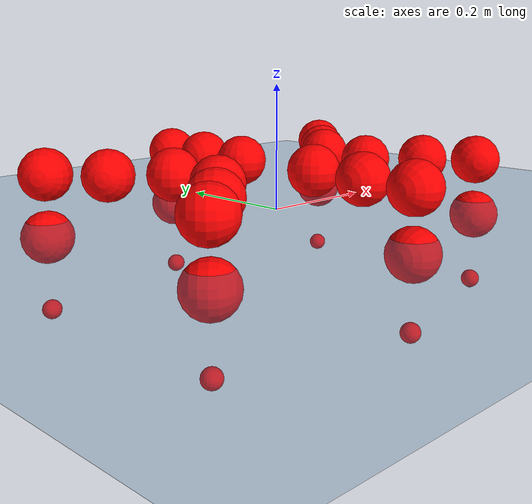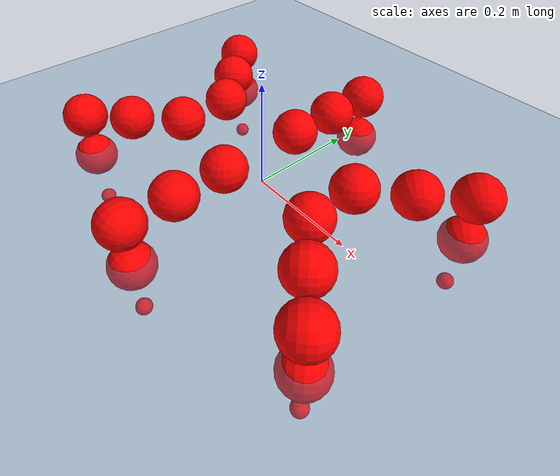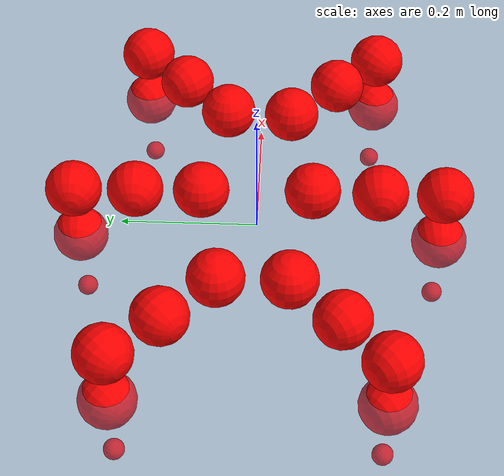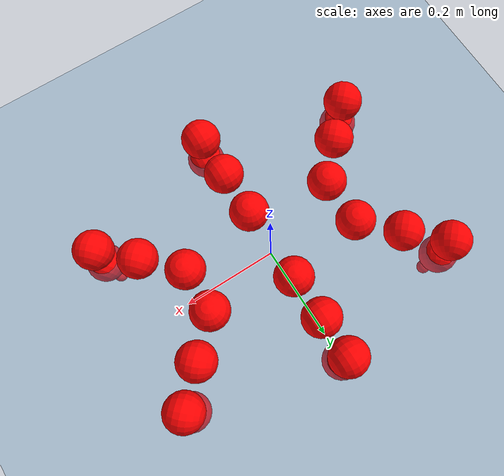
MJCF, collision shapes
<mujoco model="Golem">
  <compiler angle="radian" assetdir="assets" balanceinertia="true" inertiafromgeom="false"/>

  <option timestep="0.005" density="1.2" viscosity="2e-05"/>

  <size nkey="1"/>

  <visual>
    <quality shadowsize="8192"/>
    <map shadowclip="0.5"/>
  </visual>

  <default>
    <default class="/">
      <joint armature="0.01" damping="0.01" frictionloss="0.01"/>
      <geom contype="0" conaffinity="0" group="1" solref="-1000 -80"/>
      <site size="0.01 0.005 0.005" group="5"/>
      <general forcelimited="true" biastype="affine" gainprm="25" biasprm="0 -25 -0.5"/>
      <default class="visual">
        <geom type="mesh" group="2"/>
      </default>
      <default class="collision">
        <geom group="3"/>
      </default>
      <default class="foot">
        <geom size="0.01 0 0" condim="6" group="4" priority="1" solimp="0.015 1 0.01"/>
      </default>
      <default class="reward_collision_sphere">
        <geom group="5" rgba="1 0 0 1"/>
      </default>
    </default>
  </default>

  <asset>
    <texture type="skybox" colorspace="auto" name="//unnamed_texture_0" builtin="gradient" rgb1="0.95 0.95 0.95" rgb2="0.95 0.95 0.95" width="100" height="600"/>
    <texture type="2d" colorspace="auto" name="texplane" builtin="checker" rgb1="0.345 0.575 0.748" rgb2="0.345 0.575 0.748" markrgb="1 1 1" width="512" height="512"/>
    <material name="MatPlane" class="/" texture="texplane" texuniform="true" texrepeat="2 2" specular="0.9"/>
    <mesh name="body" class="/" file="body.stl" scale="0.001 0.001 0.001"/>
    <mesh name="coxa" class="/" file="coxa.stl" scale="0.001 0.001 0.001"/>
    <mesh name="femur" class="/" file="femur.stl" scale="0.001 0.001 0.001"/>
    <mesh name="tibia" class="/" file="tibia.stl" scale="0.001 0.001 0.001"/>
    <mesh name="tarsus" class="/" file="tarsus.stl" scale="0.001 0.001 0.001"/>
  </asset>

  <worldbody>
    <geom name="floor" class="/" size="100 100 0.125" type="plane" group="0" material="MatPlane"/>
    <light name="toplight_shadow" class="/" pos="0 0 5" dir="0.0990148 0.0990148 -0.990148" type="directional" ambient="0.04 0.04 0.04" diffuse="0.55 0.55 0.55" specular="0.12 0.12 0.12"/>
    <light name="toplight_fill" class="/" pos="0 0 5" dir="0.0990148 0.0990148 -0.990148" type="directional" castshadow="false" ambient="0.04 0.04 0.04" diffuse="0.3 0.3 0.3" specular="0.08 0.08 0.08"/>
    <body name="trunk" pos="-0.000808314 -0.000345449 -0.00059775" quat="1 0.000115 -5.80089e-05 -0.000284759">
      <inertial pos="0.00115084 -0.000338824 -0.00486212" quat="0.999997 0.00174687 -0.00154909 -3.02631e-05" mass="3.83619" diaginertia="0.0142378 0.00447708 0.0177415"/>
      <joint name="//unnamed_joint_0" type="free"/>
      <geom name="//unnamed_geom_1" class="/" pos="0 0 0.0715928" quat="1 0 0 0" type="mesh" rgba="0.9 0.9 0.9 1" mesh="body"/>
      <site name="imu" class="/" pos="0.149186 0.00396423 0.113471" size="0.0101499"/>
      <camera name="track" class="/" pos="0 -1.70732 0" quat="0.707107 0.707107 0 0" mode="trackcom"/>
      <camera name="ego_camera" class="/" pos="0.139446 0 0.111864" quat="-0.5 -0.5 0.5 0.5"/>
      <body name="coxa_RR" pos="-0.190067 -0.0729544 0.0709612" quat="0.382886 0.000226833 -0.000323626 -0.923795">
        <inertial pos="6.72235e-05 -0.000185557 -0.000344594" quat="0.999999 -0.000262292 0.00160825 3.21061e-05" mass="0.206495" diaginertia="0.0139095 0.00450681 0.0167241"/>
        <joint name="coxa_joint_RR" class="/" pos="0 0 0" axis="-0.00232008 -0.00025499 -0.999997" range="-3.13367 3.15283" armature="0.0102368" damping="0.00901484" frictionloss="0.00991617"/>
        <geom name="//unnamed_geom_2" class="/" type="mesh" rgba="0.2 0.2 0.2 1" mesh="coxa"/>
        <geom name="//unnamed_geom_3" class="reward_collision_sphere" size="0.0405995" pos="-0.0321798 0 0"/>
        <body name="femur_RR" pos="0.0650874 0.0032 -0.00175025" quat="0.500012 -0.5 0.500307 0.499681">
          <inertial pos="-0.00260826 -5.45354e-05 -0.0026536" quat="0.999914 -0.00646568 0.0111363 -0.00258588" mass="0.204158" diaginertia="0.0138735 0.00440693 0.0170629"/>
          <joint name="femur_joint_RR" class="/" pos="0 0 0" axis="-0.00366185 -1.96332e-05 -0.999993" stiffness="0.00755426" range="-3.11831 3.13775" armature="0.00990542" damping="0" frictionloss="0.0102595"/>
          <geom name="//unnamed_geom_4" class="/" type="mesh" rgba="0.9 0.9 0.9 1" mesh="femur"/>
          <geom name="//unnamed_geom_5" class="reward_collision_sphere" size="0.0405995"/>
          <body name="tibia_RR" pos="0.00185856 -0.0915676 -0.00190893" quat="0.000357075 1 -4.64469e-05 4.80513e-05">
            <inertial pos="-0.000170118 0.000446682 -0.00213307" quat="0.999999 0.000695308 0.00130572 -0.000322884" mass="0.214036" diaginertia="0.0147886 0.00476028 0.0180655"/>
            <joint name="tibia_joint_RR" class="/" pos="0 0 0" axis="-0.0073181 -0.00750843 0.999945" range="-3.14765 3.13646" armature="0.0103478" damping="0.00252287" frictionloss="0.00934044"/>
            <geom name="//unnamed_geom_6" class="/" type="mesh" rgba="0.2 0.2 0.2 1" mesh="tibia"/>
            <geom name="//unnamed_geom_7" class="reward_collision_sphere" size="0.0405995"/>
            <body name="tarsus_RR" pos="0.0935766 -0.000488601 -0.000735622" quat="1 -6.2732e-06 6.77895e-06 6.25704e-06">
              <inertial pos="0.0663283 0.000628171 9.85297e-05" quat="0.510082 0.497796 0.500068 0.491882" mass="0.213976" diaginertia="0.013966 0.00450652 0.0178335"/>
              <joint name="tarsus_joint_RR" class="/" pos="0 0 0" axis="-0.0071753 0.00552162 0.999959" range="-3.14824 3.12411" armature="0.0105362" damping="0.0409939" frictionloss="0.00961771"/>
              <geom name="//unnamed_geom_8" class="/" type="mesh" rgba="0.9 0.9 0.9 1" mesh="tarsus"/>
              <geom name="foot_1" class="foot" size="0.00996376" pos="0.120138 0 0" quat="0 -0.707107 0 0.707107"/>
              <geom name="//unnamed_geom_10" class="reward_collision_sphere" size="0.0405995"/>
              <geom name="//unnamed_geom_11" class="reward_collision_sphere" size="0.0152248" pos="0.115311 0 0"/>
              <site name="foot_1" class="foot" pos="0.120138 0 0" quat="0 -0.707107 0 0.707107" size="0.0101499"/>
            </body>
          </body>
        </body>
      </body>
      <body name="coxa_RM" pos="0.000577731 -0.111746 0.0732314" quat="0.70715 0.000818267 -0.0010368 -0.707062">
        <inertial pos="-0.001694 -3.61116e-05 -0.00224416" quat="0.999974 -0.00572907 0.0027826 -0.00336513" mass="0.20975" diaginertia="0.0136982 0.00451805 0.0175984"/>
        <joint name="coxa_joint_RM" class="/" pos="0 0 0" axis="-0.00331812 0.00110952 -0.999994" range="-3.12519 3.13485" armature="0.01005" damping="0.00903822" frictionloss="0.0104664"/>
        <geom name="//unnamed_geom_12" class="/" type="mesh" rgba="0.2 0.2 0.2 1" mesh="coxa"/>
        <geom name="//unnamed_geom_13" class="reward_collision_sphere" size="0.0405995" pos="-0.0321798 0 0"/>
        <body name="femur_RM" pos="0.0647125 0.00035488 -0.00155465" quat="0.500056 -0.499928 0.500367 0.49965">
          <inertial pos="0.00249134 -0.000491127 0.000163748" quat="0.999916 0.00768327 -0.00644354 0.00819322" mass="0.211137" diaginertia="0.0139939 0.0044224 0.0175558"/>
          <joint name="femur_joint_RM" class="/" pos="0 0 0" axis="-0.000836888 0.00899896 -0.999959" range="-3.13493 3.14247" armature="0.00968429" damping="0.00540733" frictionloss="0.0099804"/>
          <geom name="//unnamed_geom_14" class="/" type="mesh" rgba="0.9 0.9 0.9 1" mesh="femur"/>
          <geom name="//unnamed_geom_15" class="reward_collision_sphere" size="0.0405995"/>
          <body name="tibia_RM" pos="0.000727152 -0.0924023 -0.000202412" quat="4.45408e-05 1 0.000224424 7.90614e-05">
            <inertial pos="-0.0025042 -0.00105238 -0.000377065" quat="0.999999 0.000561302 0.000275208 -0.00146786" mass="0.207202" diaginertia="0.014325 0.00440694 0.0167449"/>
            <joint name="tibia_joint_RM" class="/" pos="0 0 0" axis="0.000290005 0.00168458 0.999999" range="-3.13019 3.15509" armature="0.0101032" damping="0.0121839" frictionloss="0.0105981"/>
            <geom name="//unnamed_geom_16" class="/" type="mesh" rgba="0.2 0.2 0.2 1" mesh="tibia"/>
            <geom name="//unnamed_geom_17" class="reward_collision_sphere" size="0.0405995"/>
            <body name="tarsus_RM" pos="0.094757 -0.000769082 -0.000227932" quat="1 3.23249e-05 0.000300101 -2.52224e-05">
              <inertial pos="0.065032 0.000457762 -0.000288589" quat="0.497867 0.498753 0.502999 0.500366" mass="0.207518" diaginertia="0.0136251 0.00449289 0.0176014"/>
              <joint name="tarsus_joint_RM" class="/" pos="0 0 0" axis="-0.000655089 0.00822492 0.999966" range="-3.12837 3.13539" armature="0.0100675" damping="0.00526466" frictionloss="0.010423"/>
              <geom name="//unnamed_geom_18" class="/" type="mesh" rgba="0.9 0.9 0.9 1" mesh="tarsus"/>
              <geom name="foot_2" class="foot" size="0.00932528" pos="0.120138 0 0" quat="0 -0.707107 0 0.707107"/>
              <geom name="//unnamed_geom_20" class="reward_collision_sphere" size="0.0405995"/>
              <geom name="//unnamed_geom_21" class="reward_collision_sphere" size="0.0152248" pos="0.115311 0 0"/>
              <site name="foot_2" class="foot" pos="0.120138 0 0" quat="0 -0.707107 0 0.707107" size="0.0101499"/>
            </body>
          </body>
        </body>
      </body>
      <body name="coxa_RF" pos="0.190865 -0.068898 0.0696521" quat="0.923928 -4.47578e-05 0.000273167 -0.382565">
        <inertial pos="-0.00254947 -0.000791049 0.000804299" quat="0.99995 0.000364547 0.00736824 -0.00680909" mass="0.213724" diaginertia="0.0141315 0.00434866 0.0173034"/>
        <joint name="coxa_joint_RF" class="/" pos="0 0 0" axis="-0.00219418 -0.000694712 -0.999997" range="-3.12581 3.13737" armature="0.0108196" damping="0.0106529" frictionloss="0.0106713"/>
        <geom name="//unnamed_geom_22" class="/" type="mesh" rgba="0.2 0.2 0.2 1" mesh="coxa"/>
        <geom name="//unnamed_geom_23" class="reward_collision_sphere" size="0.0405995" pos="-0.0321798 0 0"/>
        <body name="femur_RF" pos="0.0642185 -0.00103772 0.0010375" quat="0.499614 -0.500219 0.499716 0.500451">
          <inertial pos="0.000119767 0.00245269 9.43828e-05" quat="0.999997 0.00156518 -7.66626e-05 0.00189154" mass="0.206829" diaginertia="0.0143383 0.00442605 0.0174872"/>
          <joint name="femur_joint_RF" class="/" pos="0 0 0" axis="0.00369705 0.000183343 -0.999993" range="-3.14859 3.11933" armature="0.0101494" damping="0.0057425" frictionloss="0.0106563"/>
          <geom name="//unnamed_geom_24" class="/" type="mesh" rgba="0.9 0.9 0.9 1" mesh="femur"/>
          <geom name="//unnamed_geom_25" class="reward_collision_sphere" size="0.0405995"/>
          <body name="tibia_RF" pos="0.0015337 -0.0903017 0.00122122" quat="-0.000113691 1 6.41031e-05 0.000369691">
            <inertial pos="-0.0019308 -0.00159243 0.00226138" quat="0.999999 0.000877641 -0.000136146 -0.000534571" mass="0.212746" diaginertia="0.0142794 0.00456944 0.0175458"/>
            <joint name="tibia_joint_RF" class="/" pos="0 0 0" axis="-0.00191603 -0.00204414 0.999996" range="-3.12895 3.10981" armature="0.01015" damping="0.00233647" frictionloss="0.0104267"/>
            <geom name="//unnamed_geom_26" class="/" type="mesh" rgba="0.2 0.2 0.2 1" mesh="tibia"/>
            <geom name="//unnamed_geom_27" class="reward_collision_sphere" size="0.0405995"/>
            <body name="tarsus_RF" pos="0.0954063 0.00220227 -0.00179351" quat="1 0.000144118 0.000506744 -0.000100523">
              <inertial pos="0.0634317 0.000300658 -0.000745551" quat="0.501238 0.502316 0.499785 0.496643" mass="0.206303" diaginertia="0.0140793 0.00467604 0.0170905"/>
              <joint name="tarsus_joint_RF" class="/" pos="0 0 0" axis="-0.00692914 0.00132016 0.999975" range="-3.13896 3.14176" armature="0.0109992" damping="0.00161444" frictionloss="0.0114922"/>
              <geom name="//unnamed_geom_28" class="/" type="mesh" rgba="0.9 0.9 0.9 1" mesh="tarsus"/>
              <geom name="foot_3" class="foot" size="0.0110883" pos="0.120138 0 0" quat="0 -0.707107 0 0.707107"/>
              <geom name="//unnamed_geom_30" class="reward_collision_sphere" size="0.0405995"/>
              <geom name="//unnamed_geom_31" class="reward_collision_sphere" size="0.0152248" pos="0.115311 0 0"/>
              <site name="foot_3" class="foot" pos="0.120138 0 0" quat="0 -0.707107 0 0.707107" size="0.0101499"/>
            </body>
          </body>
        </body>
      </body>
      <body name="coxa_LR" pos="-0.191038 0.0727027 0.0715088" quat="0.382346 -0.000822995 -0.000518259 0.924019">
        <inertial pos="0.000368418 -0.0012543 -0.00220677" quat="0.999968 -0.00134598 -0.0065773 0.00439966" mass="0.197482" diaginertia="0.0137088 0.00437294 0.0167953"/>
        <joint name="coxa_joint_LR" class="/" pos="0 0 0" axis="-0.000973159 0.00131795 -0.999999" range="-3.11797 3.19167" armature="0.0109403" damping="0.0130864" frictionloss="0.00881306"/>
        <geom name="//unnamed_geom_32" class="/" type="mesh" rgba="0.2 0.2 0.2 1" mesh="coxa"/>
        <geom name="//unnamed_geom_33" class="reward_collision_sphere" size="0.0405995" pos="-0.0321798 0 0"/>
        <body name="femur_LR" pos="0.0655863 -0.00108591 -0.00167712" quat="0.499959 -0.50008 0.500021 0.499941">
          <inertial pos="-0.000727908 -0.000698694 -0.000640199" quat="1 -0.000113609 -0.000947012 0.000279069" mass="0.208679" diaginertia="0.0143128 0.00467744 0.0175986"/>
          <joint name="femur_joint_LR" class="/" pos="0 0 0" axis="0.00519801 -0.0023536 0.999984" range="-3.12735 3.10748" armature="0.0106067" damping="0.00804096" frictionloss="0.0106882"/>
          <geom name="//unnamed_geom_34" class="/" type="mesh" rgba="0.9 0.9 0.9 1" mesh="femur"/>
          <geom name="//unnamed_geom_35" class="reward_collision_sphere" size="0.0405995"/>
          <body name="tibia_LR" pos="-0.00162962 -0.0941958 -0.000652734" quat="-0.000751634 1 0.000363294 6.08786e-05">
            <inertial pos="0.000604981 0.0026938 -5.94225e-05" quat="0.999962 0.00708901 0.0045267 0.00236386" mass="0.204334" diaginertia="0.0145711 0.00460721 0.0168249"/>
            <joint name="tibia_joint_LR" class="/" pos="0 0 0" axis="0.00380863 0.0036901 -0.999986" range="-3.13346 3.14016" armature="0.00961271" damping="0.0028787" frictionloss="0.0102298"/>
            <geom name="//unnamed_geom_36" class="/" type="mesh" rgba="0.2 0.2 0.2 1" mesh="tibia"/>
            <geom name="//unnamed_geom_37" class="reward_collision_sphere" size="0.0405995"/>
            <body name="tarsus_LR" pos="0.0967123 0.00210257 0.000534855" quat="1 -0.000244549 0.000151836 0.000150229">
              <inertial pos="0.0653654 -0.000151678 0.00108051" quat="0.499048 0.501941 0.499513 0.499493" mass="0.201634" diaginertia="0.0137727 0.00436591 0.0169154"/>
              <joint name="tarsus_joint_LR" class="/" pos="0 0 0" axis="0.000787366 0.00265325 -0.999996" range="-3.13034 3.15368" armature="0.00868398" damping="0.0285169" frictionloss="0.0106519"/>
              <geom name="//unnamed_geom_38" class="/" type="mesh" rgba="0.9 0.9 0.9 1" mesh="tarsus"/>
              <geom name="foot_4" class="foot" size="0.00980879" pos="0.120138 0 0" quat="0.707107 0 -0.707107 0"/>
              <geom name="//unnamed_geom_40" class="reward_collision_sphere" size="0.0405995"/>
              <geom name="//unnamed_geom_41" class="reward_collision_sphere" size="0.0152248" pos="0.115311 0 0"/>
              <site name="foot_4" class="foot" pos="0.120138 0 0" quat="0.707107 0 -0.707107 0" size="0.0101499"/>
            </body>
          </body>
        </body>
      </body>
      <body name="coxa_LM" pos="-0.00157575 0.112292 0.0723492" quat="0.70786 -0.00031519 -0.000361386 0.706352">
        <inertial pos="0.00240066 -0.00232977 0.000596961" quat="0.999953 -0.00380683 0.00322387 -0.00831564" mass="0.211181" diaginertia="0.0138705 0.0045192 0.0174859"/>
        <joint name="coxa_joint_LM" class="/" pos="0 0 0" axis="-0.000336236 0.00100244 -0.999999" range="-3.13692 3.13256" armature="0.0113921" damping="0" frictionloss="0.00961949"/>
        <geom name="//unnamed_geom_42" class="/" type="mesh" rgba="0.2 0.2 0.2 1" mesh="coxa"/>
        <geom name="//unnamed_geom_43" class="reward_collision_sphere" size="0.0405995" pos="-0.0321798 0 0"/>
        <body name="femur_LM" pos="0.062607 0.00092034 -0.000706214" quat="0.499635 -0.500393 0.500106 0.499865">
          <inertial pos="-0.00194242 6.80697e-05 -0.0023597" quat="0.999999 0.000467619 0.00142888 -0.000626315" mass="0.21818" diaginertia="0.0145511 0.0046058 0.017772"/>
          <joint name="femur_joint_LM" class="/" pos="0 0 0" axis="0.00193405 -0.0056198 0.999982" range="-3.12697 3.11847" armature="0.0105781" damping="0.00463493" frictionloss="0.0100767"/>
          <geom name="//unnamed_geom_44" class="/" type="mesh" rgba="0.9 0.9 0.9 1" mesh="femur"/>
          <geom name="//unnamed_geom_45" class="reward_collision_sphere" size="0.0405995"/>
          <body name="tibia_LM" pos="0.000949256 -0.0884853 0.00143109" quat="8.85865e-05 1 4.12518e-06 0.000282359">
            <inertial pos="0.00261223 5.11818e-07 0.00258873" quat="0.999999 0.000243088 0.000144002 -0.00163752" mass="0.207429" diaginertia="0.0141896 0.00437385 0.017689"/>
            <joint name="tibia_joint_LM" class="/" pos="0 0 0" axis="-0.000107254 -0.000485889 -1" range="-3.16157 3.13269" armature="0.0106468" damping="0" frictionloss="0.00936183"/>
            <geom name="//unnamed_geom_46" class="/" type="mesh" rgba="0.2 0.2 0.2 1" mesh="tibia"/>
            <geom name="//unnamed_geom_47" class="reward_collision_sphere" size="0.0405995"/>
            <body name="tarsus_LM" pos="0.0954286 -0.00188768 0.00118949" quat="1 9.4177e-06 0.00039363 0.000172808">
              <inertial pos="0.0638831 -5.61788e-05 0.000584398" quat="0.499144 0.500906 0.500344 0.499604" mass="0.21586" diaginertia="0.0142059 0.00483456 0.0182479"/>
              <joint name="tarsus_joint_LM" class="/" pos="0 0 0" axis="-0.00745136 0.000463885 -0.999972" stiffness="0.00532897" range="-3.19111 3.13814" armature="0.0103207" damping="0.00578529" frictionloss="0.0102329"/>
              <geom name="//unnamed_geom_48" class="/" type="mesh" rgba="0.9 0.9 0.9 1" mesh="tarsus"/>
              <geom name="foot_5" class="foot" size="0.0101825" pos="0.120138 0 0" quat="0.707107 0 -0.707107 0"/>
              <geom name="//unnamed_geom_50" class="reward_collision_sphere" size="0.0405995"/>
              <geom name="//unnamed_geom_51" class="reward_collision_sphere" size="0.0152248" pos="0.115311 0 0"/>
              <site name="foot_5" class="foot" pos="0.120138 0 0" quat="0.707107 0 -0.707107 0" size="0.0101499"/>
            </body>
          </body>
        </body>
      </body>
      <body name="coxa_LF" pos="0.192169 0.072256 0.0725673" quat="0.923451 -5.74628e-06 0.000600873 0.383716">
        <inertial pos="0.000245252 0.00274416 3.94096e-05" quat="0.999997 5.48268e-05 0.00139342 0.00215197" mass="0.211271" diaginertia="0.0145759 0.00477723 0.0180462"/>
        <joint name="coxa_joint_LF" class="/" pos="0 0 0" axis="-0.00312393 -0.00751974 -0.999967" range="-3.13731 3.14714" armature="0.0114415" damping="0" frictionloss="0.00961185"/>
        <geom name="//unnamed_geom_52" class="/" type="mesh" rgba="0.2 0.2 0.2 1" mesh="coxa"/>
        <geom name="//unnamed_geom_53" class="reward_collision_sphere" size="0.0405995" pos="-0.0321798 0 0"/>
        <body name="femur_LF" pos="0.0649515 -0.00206837 -0.00310128" quat="0.500134 -0.500525 0.500151 0.499189">
          <inertial pos="0.00101319 0.000792447 0.00266711" quat="0.999938 -0.000565071 0.0101752 0.00446675" mass="0.209925" diaginertia="0.0140982 0.00468492 0.0174225"/>
          <joint name="femur_joint_LF" class="/" pos="0 0 0" axis="-0.00641994 -0.000783269 0.999979" range="-3.13526 3.08734" armature="0.0100924" damping="0" frictionloss="0.00966286"/>
          <geom name="//unnamed_geom_54" class="/" type="mesh" rgba="0.9 0.9 0.9 1" mesh="femur"/>
          <geom name="//unnamed_geom_55" class="reward_collision_sphere" size="0.0405995"/>
          <body name="tibia_LF" pos="-0.000413767 -0.0930843 0.000312682" quat="0.000450671 0.999999 0.000146522 0.000970846">
            <inertial pos="-0.00105294 -0.00243141 6.06519e-05" quat="0.999999 0.00147143 0.000344386 0.00042427" mass="0.207948" diaginertia="0.0141543 0.0045222 0.0177058"/>
            <joint name="tibia_joint_LF" class="/" pos="0 0 0" axis="0.0115173 -0.00285923 -0.99993" stiffness="0.000919007" range="-3.1803 3.14962" armature="0.0105786" damping="0.00269273" frictionloss="0.0113796"/>
            <geom name="//unnamed_geom_56" class="/" type="mesh" rgba="0.2 0.2 0.2 1" mesh="tibia"/>
            <geom name="//unnamed_geom_57" class="reward_collision_sphere" size="0.0405995"/>
            <body name="tarsus_LF" pos="0.094783 0.00118445 -0.000461987" quat="0.999999 0.000752441 -0.00106258 -0.000150274">
              <inertial pos="0.0652623 0.000224585 -0.000292845" quat="0.498772 0.500293 0.499433 0.501498" mass="0.2094" diaginertia="0.0137255 0.00441568 0.0170637"/>
              <joint name="tarsus_joint_LF" class="/" pos="0 0 0" axis="-0.0129792 0.00807626 -0.999883" stiffness="0.028179" range="-3.15766 3.0983" armature="0.00962167" damping="0.0298387" frictionloss="0.0100648"/>
              <geom name="//unnamed_geom_58" class="/" type="mesh" rgba="0.9 0.9 0.9 1" mesh="tarsus"/>
              <geom name="foot_6" class="foot" size="0.00929267" pos="0.120138 0 0" quat="0.707107 0 -0.707107 0"/>
              <geom name="//unnamed_geom_60" class="reward_collision_sphere" size="0.0405995"/>
              <geom name="//unnamed_geom_61" class="reward_collision_sphere" size="0.0152248" pos="0.115311 0 0"/>
              <site name="foot_6" class="foot" pos="0.120138 0 0" quat="0.707107 0 -0.707107 0" size="0.0101499"/>
            </body>
          </body>
        </body>
      </body>
    </body>
  </worldbody>

  <contact>
    <pair class="/" geom1="floor" geom2="foot_1" name="//unnamed_contact_0"/>
    <pair class="/" geom1="floor" geom2="foot_2" name="//unnamed_contact_1"/>
    <pair class="/" geom1="floor" geom2="foot_3" name="//unnamed_contact_2"/>
    <pair class="/" geom1="floor" geom2="foot_4" name="//unnamed_contact_3"/>
    <pair class="/" geom1="floor" geom2="foot_5" name="//unnamed_contact_4"/>
    <pair class="/" geom1="floor" geom2="foot_6" name="//unnamed_contact_5"/>
  </contact>

  <actuator>
    <general name="coxa_joint_RR" class="/" joint="coxa_joint_RR" forcerange="-6.70187 6.70187" gainprm="24.3779" biasprm="0 -24.3779 -0.516879"/>
    <general name="femur_joint_RR" class="/" joint="femur_joint_RR" forcerange="-7.29922 7.29922" gainprm="24.3779" biasprm="0 -24.3779 -0.516879"/>
    <general name="tibia_joint_RR" class="/" joint="tibia_joint_RR" forcerange="-6.67681 6.67681" gainprm="24.3779" biasprm="0 -24.3779 -0.516879"/>
    <general name="tarsus_joint_RR" class="/" joint="tarsus_joint_RR" forcerange="-7.43581 7.43581" gainprm="24.3779" biasprm="0 -24.3779 -0.516879"/>
    <general name="coxa_joint_RM" class="/" joint="coxa_joint_RM" forcerange="-7.4037 7.4037" gainprm="24.3779" biasprm="0 -24.3779 -0.516879"/>
    <general name="femur_joint_RM" class="/" joint="femur_joint_RM" forcerange="-7.37958 7.37958" gainprm="24.3779" biasprm="0 -24.3779 -0.516879"/>
    <general name="tibia_joint_RM" class="/" joint="tibia_joint_RM" forcerange="-6.7584 6.7584" gainprm="24.3779" biasprm="0 -24.3779 -0.516879"/>
    <general name="tarsus_joint_RM" class="/" joint="tarsus_joint_RM" forcerange="-8.13951 8.13951" gainprm="24.3779" biasprm="0 -24.3779 -0.516879"/>
    <general name="coxa_joint_RF" class="/" joint="coxa_joint_RF" forcerange="-7.18177 7.18177" gainprm="24.3779" biasprm="0 -24.3779 -0.516879"/>
    <general name="femur_joint_RF" class="/" joint="femur_joint_RF" forcerange="-7.32529 7.32529" gainprm="24.3779" biasprm="0 -24.3779 -0.516879"/>
    <general name="tibia_joint_RF" class="/" joint="tibia_joint_RF" forcerange="-8.10828 8.10828" gainprm="24.3779" biasprm="0 -24.3779 -0.516879"/>
    <general name="tarsus_joint_RF" class="/" joint="tarsus_joint_RF" forcerange="-7.26471 7.26471" gainprm="24.3779" biasprm="0 -24.3779 -0.516879"/>
    <general name="coxa_joint_LR" class="/" joint="coxa_joint_LR" forcerange="-7.37529 7.37529" gainprm="24.3779" biasprm="0 -24.3779 -0.516879"/>
    <general name="femur_joint_LR" class="/" joint="femur_joint_LR" forcerange="-6.88067 6.88067" gainprm="24.3779" biasprm="0 -24.3779 -0.516879"/>
    <general name="tibia_joint_LR" class="/" joint="tibia_joint_LR" forcerange="-7.56898 7.56898" gainprm="24.3779" biasprm="0 -24.3779 -0.516879"/>
    <general name="tarsus_joint_LR" class="/" joint="tarsus_joint_LR" forcerange="-7.15222 7.15222" gainprm="24.3779" biasprm="0 -24.3779 -0.516879"/>
    <general name="coxa_joint_LM" class="/" joint="coxa_joint_LM" forcerange="-7.5672 7.5672" gainprm="24.3779" biasprm="0 -24.3779 -0.516879"/>
    <general name="femur_joint_LM" class="/" joint="femur_joint_LM" forcerange="-7.70271 7.70271" gainprm="24.3779" biasprm="0 -24.3779 -0.516879"/>
    <general name="tibia_joint_LM" class="/" joint="tibia_joint_LM" forcerange="-7.03429 7.03429" gainprm="24.3779" biasprm="0 -24.3779 -0.516879"/>
    <general name="tarsus_joint_LM" class="/" joint="tarsus_joint_LM" forcerange="-7.62772 7.62772" gainprm="24.3779" biasprm="0 -24.3779 -0.516879"/>
    <general name="coxa_joint_LF" class="/" joint="coxa_joint_LF" forcerange="-7.67015 7.67015" gainprm="24.3779" biasprm="0 -24.3779 -0.516879"/>
    <general name="femur_joint_LF" class="/" joint="femur_joint_LF" forcerange="-7.13114 7.13114" gainprm="24.3779" biasprm="0 -24.3779 -0.516879"/>
    <general name="tibia_joint_LF" class="/" joint="tibia_joint_LF" forcerange="-7.68528 7.68528" gainprm="24.3779" biasprm="0 -24.3779 -0.516879"/>
    <general name="tarsus_joint_LF" class="/" joint="tarsus_joint_LF" forcerange="-7.58808 7.58808" gainprm="24.3779" biasprm="0 -24.3779 -0.516879"/>
  </actuator>

  <sensor>
    <gyro site="imu" name="imu_angular_velocity"/>
    <velocimeter site="imu" name="imu_linear_velocity"/>
    <framelinvel objtype="site" objname="foot_1" name="foot_1_global_linear_velocity"/>
    <framelinvel objtype="site" objname="foot_2" name="foot_2_global_linear_velocity"/>
    <framelinvel objtype="site" objname="foot_3" name="foot_3_global_linear_velocity"/>
    <framelinvel objtype="site" objname="foot_4" name="foot_4_global_linear_velocity"/>
    <framelinvel objtype="site" objname="foot_5" name="foot_5_global_linear_velocity"/>
    <framelinvel objtype="site" objname="foot_6" name="foot_6_global_linear_velocity"/>
  </sensor>

  <keyframe>
    <key name="home" qpos="0 0 0.1457 1 0 0 0 0 0 0 0 0 0 0 0 0 0 0 0 0 0 0 0 0 0 0 0 0 0 0 0"/>
  </keyframe>
</mujoco>
